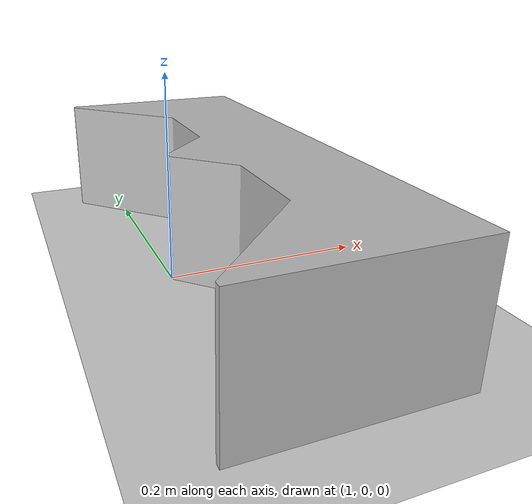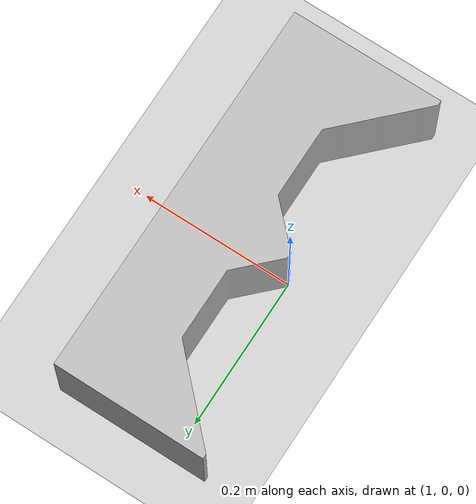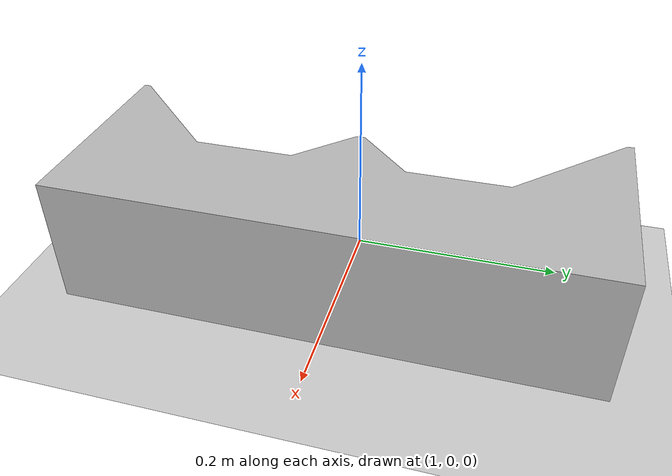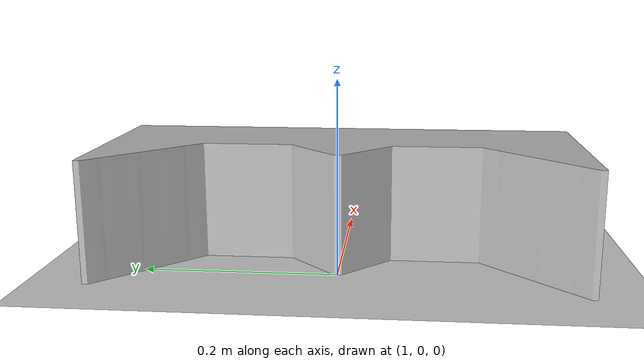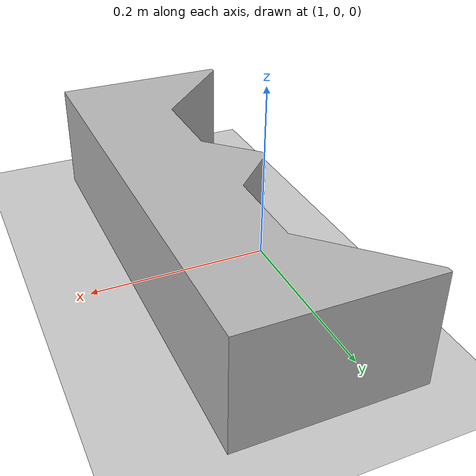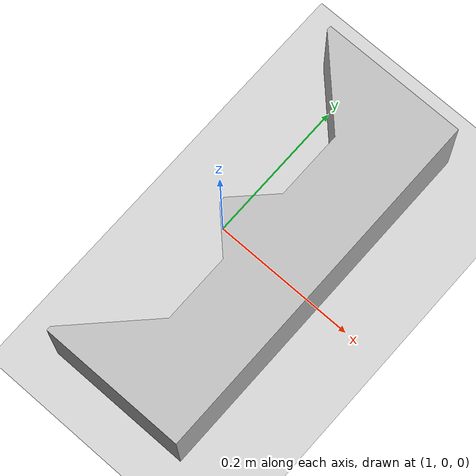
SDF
<?xml version="1.0" ?>
<sdf version="1.4">
  <world name="default">
    <physics type="ode">
      <gravity>0 0 -9.81</gravity>
      <ode>
        <solver>
          <type>quick</type>
          <iters>50</iters>
          <sor>1.4</sor>
        </solver>
        <constraints>
          <cfm>0.0</cfm>
          <erp>0.2</erp>
          <contact_max_correcting_vel>100.0</contact_max_correcting_vel>
          <contact_surface_layer>0.0</contact_surface_layer>
        </constraints>
      </ode>
      <real_time_update_rate>1000</real_time_update_rate>
      <max_step_size>0.001</max_step_size>
    </physics>
    <!-- A global light source -->
    <include>
      <uri>model://sun</uri>
    </include>
    <!-- A ground plane -->
    <include>
      <uri>model://ground_plane</uri>
    </include>
    <include>
      <uri>model://dock1</uri>
      <pose>1.0 0.0 0.0 0.0 0.0 0.0</pose>
      <static>1</static>
    </include>
  </world>
</sdf>

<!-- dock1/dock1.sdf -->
<sdf version="1.4">
<model name="dock">
  <pose>0 0 0 0 0 0</pose>
  <static>true</static>
    <link name="link">
      <inertial>
        <mass>1.0</mass>
        <inertia> <!-- interias are tricky to compute -->
          <!-- http://answers.gazebosim.org/question/4372/the-inertia-matrix-explained/ -->
          <ixx>0.083</ixx>       <!-- for a box: ixx = 0.083 * mass * (y*y + z*z) -->
          <ixy>0.0</ixy>         <!-- for a box: ixy = 0 -->
          <ixz>0.0</ixz>         <!-- for a box: ixz = 0 -->
          <iyy>0.083</iyy>       <!-- for a box: iyy = 0.083 * mass * (x*x + z*z) -->
          <iyz>0.0</iyz>         <!-- for a box: iyz = 0 -->
          <izz>0.083</izz>       <!-- for a box: izz = 0.083 * mass * (x*x + y*y) -->
        </inertia>
      </inertial>
      <collision name="collision">
        <geometry>
            <mesh>
                <uri>model://dock1/meshes/dock1.dae</uri>
            </mesh>
        </geometry>
      </collision>
      <visual name="visual">
        <geometry>
            <mesh>
                <uri>model://dock1/meshes/dock1.dae</uri>
            </mesh>
        </geometry>
      </visual>
    </link>
  </model>
</sdf>
